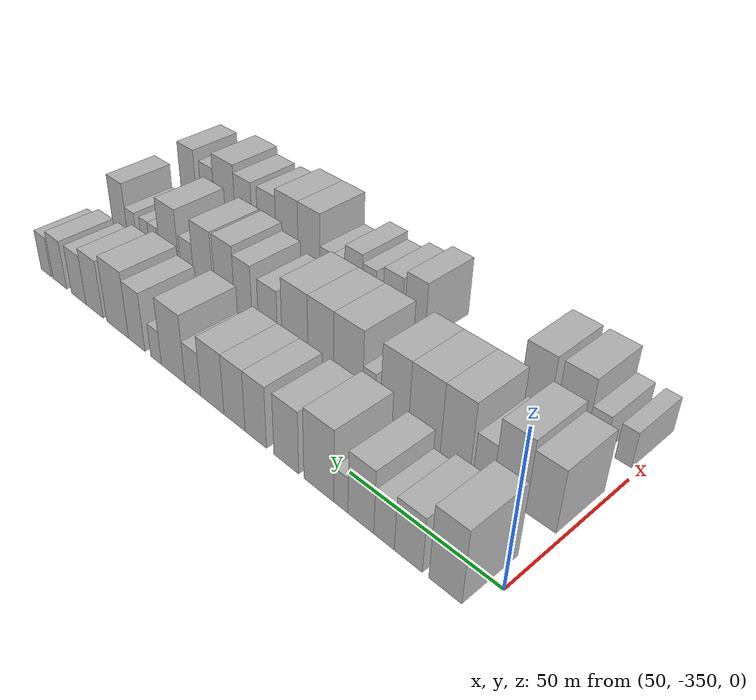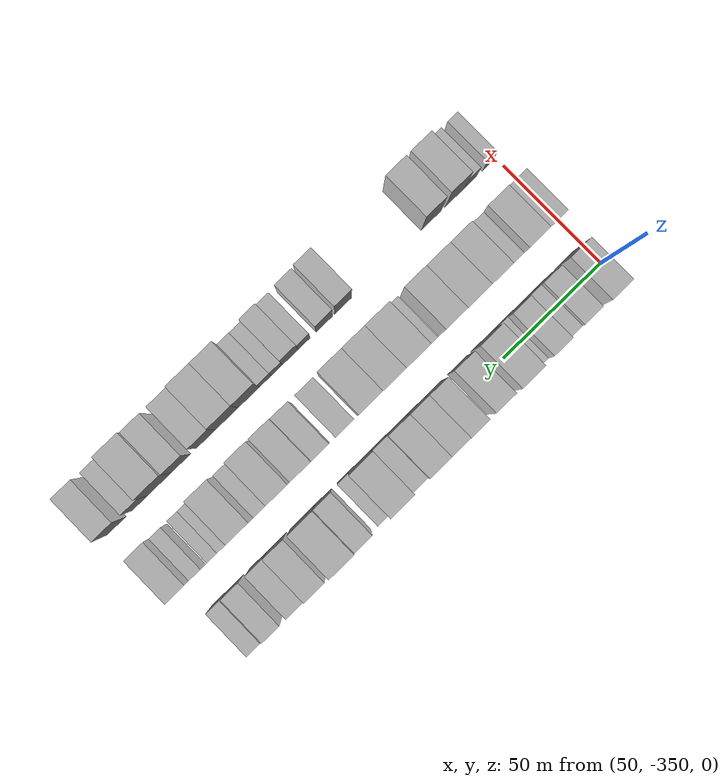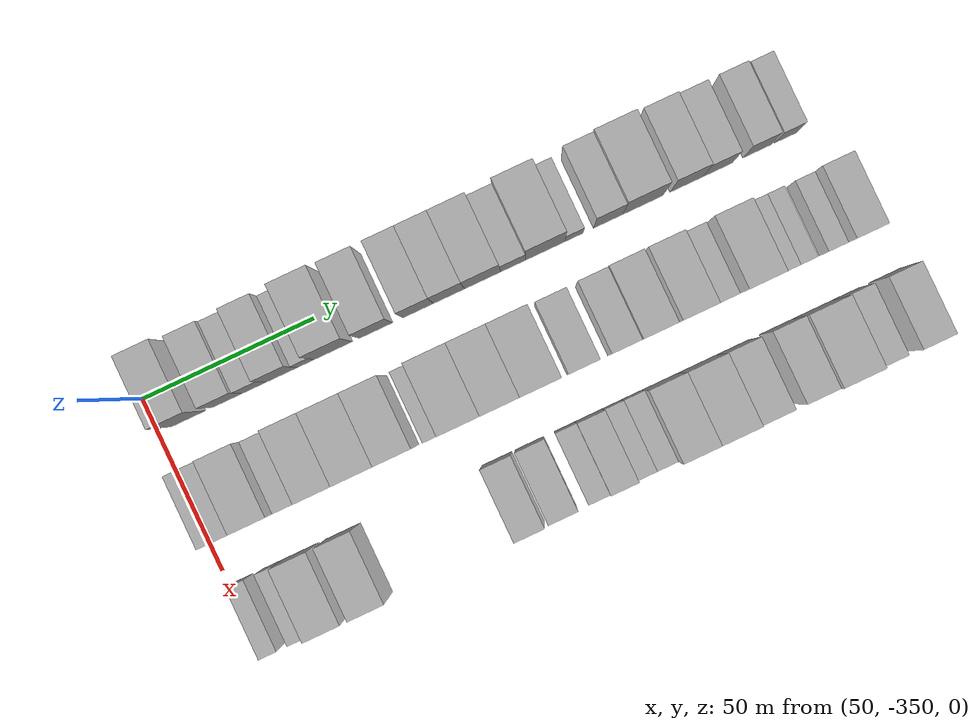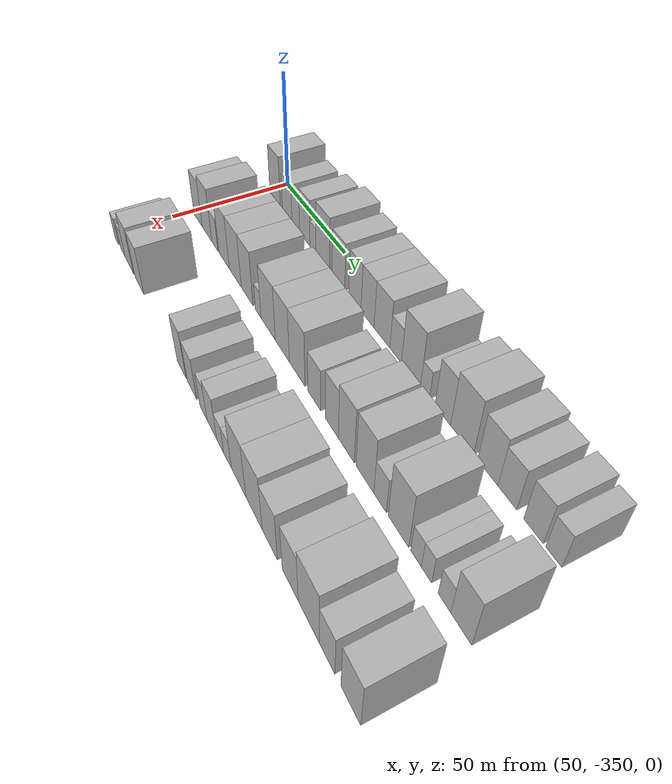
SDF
<sdf version="1.6">
 <world name="default">
  <model name="building_1">
   <static>1</static>
   <pose>50.0000 -341.0320 0 0.000000 0.000000 0.000000</pose>
   <link name="link">
    <pose>0 0 12.00 0 0 0</pose>
    <collision name="collision"><geometry><box><size>20.0000 9.9359 24.0000</size></box></geometry></collision>
    <visual name="visual">
     <cast_shadows>0</cast_shadows>
     <geometry><box><size>20.0000 9.9359 24.0000</size></box></geometry>
     <material>
      <script>
       <uri>model://HANNAS_wall/materials/scripts</uri>
       <uri>model://HANNAS_wall/materials/textures</uri>
       <name>vrc/HANNAS_wall</name>
      </script>
     </material>
    </visual>
   </link>
  </model>
  <model name="building_2">
   <static>1</static>
   <pose>50.0000 -329.5887 0 0.000000 0.000000 0.000000</pose>
   <link name="link">
    <pose>0 0 9.00 0 0 0</pose>
    <collision name="collision"><geometry><box><size>20.0000 8.9509 18.0000</size></box></geometry></collision>
    <visual name="visual">
     <cast_shadows>0</cast_shadows>
     <geometry><box><size>20.0000 8.9509 18.0000</size></box></geometry>
     <material>
      <script>
       <uri>model://HANNAS_wall/materials/scripts</uri>
       <uri>model://HANNAS_wall/materials/textures</uri>
       <name>vrc/HANNAS_wall</name>
      </script>
     </material>
    </visual>
   </link>
  </model>
  <model name="building_3">
   <static>1</static>
   <pose>50.0000 -321.7223 0 0.000000 0.000000 0.000000</pose>
   <link name="link">
    <pose>0 0 7.50 0 0 0</pose>
    <collision name="collision"><geometry><box><size>20.0000 6.7819 15.0000</size></box></geometry></collision>
    <visual name="visual">
     <cast_shadows>0</cast_shadows>
     <geometry><box><size>20.0000 6.7819 15.0000</size></box></geometry>
     <material>
      <script>
       <uri>model://HANNAS_wall/materials/scripts</uri>
       <uri>model://HANNAS_wall/materials/textures</uri>
       <name>vrc/HANNAS_wall</name>
      </script>
     </material>
    </visual>
   </link>
  </model>
  <model name="building_4">
   <static>1</static>
   <pose>50.0000 -313.8562 0 0.000000 0.000000 0.000000</pose>
   <link name="link">
    <pose>0 0 10.50 0 0 0</pose>
    <collision name="collision"><geometry><box><size>20.0000 8.9503 21.0000</size></box></geometry></collision>
    <visual name="visual">
     <cast_shadows>0</cast_shadows>
     <geometry><box><size>20.0000 8.9503 21.0000</size></box></geometry>
     <material>
      <script>
       <uri>model://HANNAS_wall/materials/scripts</uri>
       <uri>model://HANNAS_wall/materials/textures</uri>
       <name>vrc/HANNAS_wall</name>
      </script>
     </material>
    </visual>
   </link>
  </model>
  <model name="building_5">
   <static>1</static>
   <pose>50.0000 -306.8981 0 0.000000 0.000000 0.000000</pose>
   <link name="link">
    <pose>0 0 6.00 0 0 0</pose>
    <collision name="collision"><geometry><box><size>20.0000 4.9658 12.0000</size></box></geometry></collision>
    <visual name="visual">
     <cast_shadows>0</cast_shadows>
     <geometry><box><size>20.0000 4.9658 12.0000</size></box></geometry>
     <material>
      <script>
       <uri>model://HANNAS_wall/materials/scripts</uri>
       <uri>model://HANNAS_wall/materials/textures</uri>
       <name>vrc/HANNAS_wall</name>
      </script>
     </material>
    </visual>
   </link>
  </model>
  <model name="building_6">
   <static>1</static>
   <pose>50.0000 -298.8900 0 0.000000 0.000000 0.000000</pose>
   <link name="link">
    <pose>0 0 12.00 0 0 0</pose>
    <collision name="collision"><geometry><box><size>20.0000 11.0505 24.0000</size></box></geometry></collision>
    <visual name="visual">
     <cast_shadows>0</cast_shadows>
     <geometry><box><size>20.0000 11.0505 24.0000</size></box></geometry>
     <material>
      <script>
       <uri>model://HANNAS_wall/materials/scripts</uri>
       <uri>model://HANNAS_wall/materials/textures</uri>
       <name>vrc/HANNAS_wall</name>
      </script>
     </material>
    </visual>
   </link>
  </model>
  <model name="building_7">
   <static>1</static>
   <pose>50.0000 -286.5290 0 0.000000 0.000000 0.000000</pose>
   <link name="link">
    <pose>0 0 10.50 0 0 0</pose>
    <collision name="collision"><geometry><box><size>20.0000 9.6714 21.0000</size></box></geometry></collision>
    <visual name="visual">
     <cast_shadows>0</cast_shadows>
     <geometry><box><size>20.0000 9.6714 21.0000</size></box></geometry>
     <material>
      <script>
       <uri>model://HANNAS_wall/materials/scripts</uri>
       <uri>model://HANNAS_wall/materials/textures</uri>
       <name>vrc/HANNAS_wall</name>
      </script>
     </material>
    </visual>
   </link>
  </model>
  <model name="building_8">
   <static>1</static>
   <pose>50.0000 -274.2663 0 0.000000 0.000000 0.000000</pose>
   <link name="link">
    <pose>0 0 10.50 0 0 0</pose>
    <collision name="collision"><geometry><box><size>20.0000 8.8541 21.0000</size></box></geometry></collision>
    <visual name="visual">
     <cast_shadows>0</cast_shadows>
     <geometry><box><size>20.0000 8.8541 21.0000</size></box></geometry>
     <material>
      <script>
       <uri>model://HANNAS_wall/materials/scripts</uri>
       <uri>model://HANNAS_wall/materials/textures</uri>
       <name>vrc/HANNAS_wall</name>
      </script>
     </material>
    </visual>
   </link>
  </model>
  <model name="building_9">
   <static>1</static>
   <pose>50.0000 -265.3142 0 0.000000 0.000000 0.000000</pose>
   <link name="link">
    <pose>0 0 10.50 0 0 0</pose>
    <collision name="collision"><geometry><box><size>20.0000 9.0501 21.0000</size></box></geometry></collision>
    <visual name="visual">
     <cast_shadows>0</cast_shadows>
     <geometry><box><size>20.0000 9.0501 21.0000</size></box></geometry>
     <material>
      <script>
       <uri>model://HANNAS_wall/materials/scripts</uri>
       <uri>model://HANNAS_wall/materials/textures</uri>
       <name>vrc/HANNAS_wall</name>
      </script>
     </material>
    </visual>
   </link>
  </model>
  <model name="building_10">
   <static>1</static>
   <pose>50.0000 -255.5468 0 0.000000 0.000000 0.000000</pose>
   <link name="link">
    <pose>0 0 10.50 0 0 0</pose>
    <collision name="collision"><geometry><box><size>20.0000 10.4847 21.0000</size></box></geometry></collision>
    <visual name="visual">
     <cast_shadows>0</cast_shadows>
     <geometry><box><size>20.0000 10.4847 21.0000</size></box></geometry>
     <material>
      <script>
       <uri>model://HANNAS_wall/materials/scripts</uri>
       <uri>model://HANNAS_wall/materials/textures</uri>
       <name>vrc/HANNAS_wall</name>
      </script>
     </material>
    </visual>
   </link>
  </model>
  <model name="building_11">
   <static>1</static>
   <pose>50.0000 -246.6663 0 0.000000 0.000000 0.000000</pose>
   <link name="link">
    <pose>0 0 7.50 0 0 0</pose>
    <collision name="collision"><geometry><box><size>20.0000 7.2763 15.0000</size></box></geometry></collision>
    <visual name="visual">
     <cast_shadows>0</cast_shadows>
     <geometry><box><size>20.0000 7.2763 15.0000</size></box></geometry>
     <material>
      <script>
       <uri>model://HANNAS_wall/materials/scripts</uri>
       <uri>model://HANNAS_wall/materials/textures</uri>
       <name>vrc/HANNAS_wall</name>
      </script>
     </material>
    </visual>
   </link>
  </model>
  <model name="building_12">
   <static>1</static>
   <pose>50.0000 -237.3181 0 0.000000 0.000000 0.000000</pose>
   <link name="link">
    <pose>0 0 12.00 0 0 0</pose>
    <collision name="collision"><geometry><box><size>20.0000 11.4202 24.0000</size></box></geometry></collision>
    <visual name="visual">
     <cast_shadows>0</cast_shadows>
     <geometry><box><size>20.0000 11.4202 24.0000</size></box></geometry>
     <material>
      <script>
       <uri>model://HANNAS_wall/materials/scripts</uri>
       <uri>model://HANNAS_wall/materials/textures</uri>
       <name>vrc/HANNAS_wall</name>
      </script>
     </material>
    </visual>
   </link>
  </model>
  <model name="building_13">
   <static>1</static>
   <pose>50.0000 -228.9586 0 0.000000 0.000000 0.000000</pose>
   <link name="link">
    <pose>0 0 6.00 0 0 0</pose>
    <collision name="collision"><geometry><box><size>20.0000 5.2988 12.0000</size></box></geometry></collision>
    <visual name="visual">
     <cast_shadows>0</cast_shadows>
     <geometry><box><size>20.0000 5.2988 12.0000</size></box></geometry>
     <material>
      <script>
       <uri>model://HANNAS_wall/materials/scripts</uri>
       <uri>model://HANNAS_wall/materials/textures</uri>
       <name>vrc/HANNAS_wall</name>
      </script>
     </material>
    </visual>
   </link>
  </model>
  <model name="building_14">
   <static>1</static>
   <pose>50.0000 -219.0519 0 0.000000 0.000000 0.000000</pose>
   <link name="link">
    <pose>0 0 10.50 0 0 0</pose>
    <collision name="collision"><geometry><box><size>20.0000 8.5146 21.0000</size></box></geometry></collision>
    <visual name="visual">
     <cast_shadows>0</cast_shadows>
     <geometry><box><size>20.0000 8.5146 21.0000</size></box></geometry>
     <material>
      <script>
       <uri>model://HANNAS_wall/materials/scripts</uri>
       <uri>model://HANNAS_wall/materials/textures</uri>
       <name>vrc/HANNAS_wall</name>
      </script>
     </material>
    </visual>
   </link>
  </model>
  <model name="building_15">
   <static>1</static>
   <pose>50.0000 -208.8753 0 0.000000 0.000000 0.000000</pose>
   <link name="link">
    <pose>0 0 12.00 0 0 0</pose>
    <collision name="collision"><geometry><box><size>20.0000 11.8385 24.0000</size></box></geometry></collision>
    <visual name="visual">
     <cast_shadows>0</cast_shadows>
     <geometry><box><size>20.0000 11.8385 24.0000</size></box></geometry>
     <material>
      <script>
       <uri>model://HANNAS_wall/materials/scripts</uri>
       <uri>model://HANNAS_wall/materials/textures</uri>
       <name>vrc/HANNAS_wall</name>
      </script>
     </material>
    </visual>
   </link>
  </model>
  <model name="building_16">
   <static>1</static>
   <pose>50.0000 -196.1090 0 0.000000 0.000000 0.000000</pose>
   <link name="link">
    <pose>0 0 10.50 0 0 0</pose>
    <collision name="collision"><geometry><box><size>20.0000 9.6940 21.0000</size></box></geometry></collision>
    <visual name="visual">
     <cast_shadows>0</cast_shadows>
     <geometry><box><size>20.0000 9.6940 21.0000</size></box></geometry>
     <material>
      <script>
       <uri>model://HANNAS_wall/materials/scripts</uri>
       <uri>model://HANNAS_wall/materials/textures</uri>
       <name>vrc/HANNAS_wall</name>
      </script>
     </material>
    </visual>
   </link>
  </model>
  <model name="building_17">
   <static>1</static>
   <pose>50.0000 -186.9708 0 0.000000 0.000000 0.000000</pose>
   <link name="link">
    <pose>0 0 9.00 0 0 0</pose>
    <collision name="collision"><geometry><box><size>20.0000 8.5825 18.0000</size></box></geometry></collision>
    <visual name="visual">
     <cast_shadows>0</cast_shadows>
     <geometry><box><size>20.0000 8.5825 18.0000</size></box></geometry>
     <material>
      <script>
       <uri>model://HANNAS_wall/materials/scripts</uri>
       <uri>model://HANNAS_wall/materials/textures</uri>
       <name>vrc/HANNAS_wall</name>
      </script>
     </material>
    </visual>
   </link>
  </model>
  <model name="building_18">
   <static>1</static>
   <pose>50.0000 -175.5464 0 0.000000 0.000000 0.000000</pose>
   <link name="link">
    <pose>0 0 9.00 0 0 0</pose>
    <collision name="collision"><geometry><box><size>20.0000 8.2664 18.0000</size></box></geometry></collision>
    <visual name="visual">
     <cast_shadows>0</cast_shadows>
     <geometry><box><size>20.0000 8.2664 18.0000</size></box></geometry>
     <material>
      <script>
       <uri>model://HANNAS_wall/materials/scripts</uri>
       <uri>model://HANNAS_wall/materials/textures</uri>
       <name>vrc/HANNAS_wall</name>
      </script>
     </material>
    </visual>
   </link>
  </model>
  <model name="building_19">
   <static>1</static>
   <pose>50.0000 -167.1778 0 0.000000 0.000000 0.000000</pose>
   <link name="link">
    <pose>0 0 7.50 0 0 0</pose>
    <collision name="collision"><geometry><box><size>20.0000 6.4707 15.0000</size></box></geometry></collision>
    <visual name="visual">
     <cast_shadows>0</cast_shadows>
     <geometry><box><size>20.0000 6.4707 15.0000</size></box></geometry>
     <material>
      <script>
       <uri>model://HANNAS_wall/materials/scripts</uri>
       <uri>model://HANNAS_wall/materials/textures</uri>
       <name>vrc/HANNAS_wall</name>
      </script>
     </material>
    </visual>
   </link>
  </model>
  <model name="building_75">
   <static>1</static>
   <pose>82.0000 -343.3972 0 0.000000 0.000000 0.000000</pose>
   <link name="link">
    <pose>0 0 10.50 0 0 0</pose>
    <collision name="collision"><geometry><box><size>20.0000 9.2056 21.0000</size></box></geometry></collision>
    <visual name="visual">
     <cast_shadows>0</cast_shadows>
     <geometry><box><size>20.0000 9.2056 21.0000</size></box></geometry>
     <material>
      <script>
       <uri>model://HANNAS_wall/materials/scripts</uri>
       <uri>model://HANNAS_wall/materials/textures</uri>
       <name>vrc/HANNAS_wall</name>
      </script>
     </material>
    </visual>
   </link>
  </model>
  <model name="building_76">
   <static>1</static>
   <pose>82.0000 -333.6849 0 0.000000 0.000000 0.000000</pose>
   <link name="link">
    <pose>0 0 12.00 0 0 0</pose>
    <collision name="collision"><geometry><box><size>20.0000 10.2191 24.0000</size></box></geometry></collision>
    <visual name="visual">
     <cast_shadows>0</cast_shadows>
     <geometry><box><size>20.0000 10.2191 24.0000</size></box></geometry>
     <material>
      <script>
       <uri>model://HANNAS_wall/materials/scripts</uri>
       <uri>model://HANNAS_wall/materials/textures</uri>
       <name>vrc/HANNAS_wall</name>
      </script>
     </material>
    </visual>
   </link>
  </model>
  <model name="building_77">
   <static>1</static>
   <pose>82.0000 -325.3562 0 0.000000 0.000000 0.000000</pose>
   <link name="link">
    <pose>0 0 7.50 0 0 0</pose>
    <collision name="collision"><geometry><box><size>20.0000 6.4383 15.0000</size></box></geometry></collision>
    <visual name="visual">
     <cast_shadows>0</cast_shadows>
     <geometry><box><size>20.0000 6.4383 15.0000</size></box></geometry>
     <material>
      <script>
       <uri>model://HANNAS_wall/materials/scripts</uri>
       <uri>model://HANNAS_wall/materials/textures</uri>
       <name>vrc/HANNAS_wall</name>
      </script>
     </material>
    </visual>
   </link>
  </model>
  <model name="building_78">
   <static>1</static>
   <pose>82.0000 -316.0424 0 0.000000 0.000000 0.000000</pose>
   <link name="link">
    <pose>0 0 12.00 0 0 0</pose>
    <collision name="collision"><geometry><box><size>20.0000 10.1892 24.0000</size></box></geometry></collision>
    <visual name="visual">
     <cast_shadows>0</cast_shadows>
     <geometry><box><size>20.0000 10.1892 24.0000</size></box></geometry>
     <material>
      <script>
       <uri>model://HANNAS_wall/materials/scripts</uri>
       <uri>model://HANNAS_wall/materials/textures</uri>
       <name>vrc/HANNAS_wall</name>
      </script>
     </material>
    </visual>
   </link>
  </model>
  <model name="building_79">
   <static>1</static>
   <pose>82.0000 -305.2497 0 0.000000 0.000000 0.000000</pose>
   <link name="link">
    <pose>0 0 12.00 0 0 0</pose>
    <collision name="collision"><geometry><box><size>20.0000 11.3962 24.0000</size></box></geometry></collision>
    <visual name="visual">
     <cast_shadows>0</cast_shadows>
     <geometry><box><size>20.0000 11.3962 24.0000</size></box></geometry>
     <material>
      <script>
       <uri>model://HANNAS_wall/materials/scripts</uri>
       <uri>model://HANNAS_wall/materials/textures</uri>
       <name>vrc/HANNAS_wall</name>
      </script>
     </material>
    </visual>
   </link>
  </model>
  <model name="building_80">
   <static>1</static>
   <pose>82.0000 -294.3235 0 0.000000 0.000000 0.000000</pose>
   <link name="link">
    <pose>0 0 12.00 0 0 0</pose>
    <collision name="collision"><geometry><box><size>20.0000 10.4561 24.0000</size></box></geometry></collision>
    <visual name="visual">
     <cast_shadows>0</cast_shadows>
     <geometry><box><size>20.0000 10.4561 24.0000</size></box></geometry>
     <material>
      <script>
       <uri>model://HANNAS_wall/materials/scripts</uri>
       <uri>model://HANNAS_wall/materials/textures</uri>
       <name>vrc/HANNAS_wall</name>
      </script>
     </material>
    </visual>
   </link>
  </model>
  <model name="building_81">
   <static>1</static>
   <pose>82.0000 -284.6450 0 0.000000 0.000000 0.000000</pose>
   <link name="link">
    <pose>0 0 6.00 0 0 0</pose>
    <collision name="collision"><geometry><box><size>20.0000 4.9009 12.0000</size></box></geometry></collision>
    <visual name="visual">
     <cast_shadows>0</cast_shadows>
     <geometry><box><size>20.0000 4.9009 12.0000</size></box></geometry>
     <material>
      <script>
       <uri>model://HANNAS_wall/materials/scripts</uri>
       <uri>model://HANNAS_wall/materials/textures</uri>
       <name>vrc/HANNAS_wall</name>
      </script>
     </material>
    </visual>
   </link>
  </model>
  <model name="building_82">
   <static>1</static>
   <pose>82.0000 -276.3248 0 0.000000 0.000000 0.000000</pose>
   <link name="link">
    <pose>0 0 12.00 0 0 0</pose>
    <collision name="collision"><geometry><box><size>20.0000 11.7394 24.0000</size></box></geometry></collision>
    <visual name="visual">
     <cast_shadows>0</cast_shadows>
     <geometry><box><size>20.0000 11.7394 24.0000</size></box></geometry>
     <material>
      <script>
       <uri>model://HANNAS_wall/materials/scripts</uri>
       <uri>model://HANNAS_wall/materials/textures</uri>
       <name>vrc/HANNAS_wall</name>
      </script>
     </material>
    </visual>
   </link>
  </model>
  <model name="building_83">
   <static>1</static>
   <pose>82.0000 -265.0040 0 0.000000 0.000000 0.000000</pose>
   <link name="link">
    <pose>0 0 12.00 0 0 0</pose>
    <collision name="collision"><geometry><box><size>20.0000 10.9022 24.0000</size></box></geometry></collision>
    <visual name="visual">
     <cast_shadows>0</cast_shadows>
     <geometry><box><size>20.0000 10.9022 24.0000</size></box></geometry>
     <material>
      <script>
       <uri>model://HANNAS_wall/materials/scripts</uri>
       <uri>model://HANNAS_wall/materials/textures</uri>
       <name>vrc/HANNAS_wall</name>
      </script>
     </material>
    </visual>
   </link>
  </model>
  <model name="building_84">
   <static>1</static>
   <pose>82.0000 -253.8246 0 0.000000 0.000000 0.000000</pose>
   <link name="link">
    <pose>0 0 12.00 0 0 0</pose>
    <collision name="collision"><geometry><box><size>20.0000 11.4564 24.0000</size></box></geometry></collision>
    <visual name="visual">
     <cast_shadows>0</cast_shadows>
     <geometry><box><size>20.0000 11.4564 24.0000</size></box></geometry>
     <material>
      <script>
       <uri>model://HANNAS_wall/materials/scripts</uri>
       <uri>model://HANNAS_wall/materials/textures</uri>
       <name>vrc/HANNAS_wall</name>
      </script>
     </material>
    </visual>
   </link>
  </model>
  <model name="building_85">
   <static>1</static>
   <pose>82.0000 -241.6808 0 0.000000 0.000000 0.000000</pose>
   <link name="link">
    <pose>0 0 9.00 0 0 0</pose>
    <collision name="collision"><geometry><box><size>20.0000 8.8311 18.0000</size></box></geometry></collision>
    <visual name="visual">
     <cast_shadows>0</cast_shadows>
     <geometry><box><size>20.0000 8.8311 18.0000</size></box></geometry>
     <material>
      <script>
       <uri>model://HANNAS_wall/materials/scripts</uri>
       <uri>model://HANNAS_wall/materials/textures</uri>
       <name>vrc/HANNAS_wall</name>
      </script>
     </material>
    </visual>
   </link>
  </model>
  <model name="building_86">
   <static>1</static>
   <pose>82.0000 -230.0495 0 0.000000 0.000000 0.000000</pose>
   <link name="link">
    <pose>0 0 10.50 0 0 0</pose>
    <collision name="collision"><geometry><box><size>20.0000 8.4316 21.0000</size></box></geometry></collision>
    <visual name="visual">
     <cast_shadows>0</cast_shadows>
     <geometry><box><size>20.0000 8.4316 21.0000</size></box></geometry>
     <material>
      <script>
       <uri>model://HANNAS_wall/materials/scripts</uri>
       <uri>model://HANNAS_wall/materials/textures</uri>
       <name>vrc/HANNAS_wall</name>
      </script>
     </material>
    </visual>
   </link>
  </model>
  <model name="building_87">
   <static>1</static>
   <pose>82.0000 -220.9518 0 0.000000 0.000000 0.000000</pose>
   <link name="link">
    <pose>0 0 12.00 0 0 0</pose>
    <collision name="collision"><geometry><box><size>20.0000 9.7637 24.0000</size></box></geometry></collision>
    <visual name="visual">
     <cast_shadows>0</cast_shadows>
     <geometry><box><size>20.0000 9.7637 24.0000</size></box></geometry>
     <material>
      <script>
       <uri>model://HANNAS_wall/materials/scripts</uri>
       <uri>model://HANNAS_wall/materials/textures</uri>
       <name>vrc/HANNAS_wall</name>
      </script>
     </material>
    </visual>
   </link>
  </model>
  <model name="building_88">
   <static>1</static>
   <pose>82.0000 -209.9772 0 0.000000 0.000000 0.000000</pose>
   <link name="link">
    <pose>0 0 12.00 0 0 0</pose>
    <collision name="collision"><geometry><box><size>20.0000 10.1855 24.0000</size></box></geometry></collision>
    <visual name="visual">
     <cast_shadows>0</cast_shadows>
     <geometry><box><size>20.0000 10.1855 24.0000</size></box></geometry>
     <material>
      <script>
       <uri>model://HANNAS_wall/materials/scripts</uri>
       <uri>model://HANNAS_wall/materials/textures</uri>
       <name>vrc/HANNAS_wall</name>
      </script>
     </material>
    </visual>
   </link>
  </model>
  <model name="building_89">
   <static>1</static>
   <pose>82.0000 -201.4485 0 0.000000 0.000000 0.000000</pose>
   <link name="link">
    <pose>0 0 7.50 0 0 0</pose>
    <collision name="collision"><geometry><box><size>20.0000 6.8718 15.0000</size></box></geometry></collision>
    <visual name="visual">
     <cast_shadows>0</cast_shadows>
     <geometry><box><size>20.0000 6.8718 15.0000</size></box></geometry>
     <material>
      <script>
       <uri>model://HANNAS_wall/materials/scripts</uri>
       <uri>model://HANNAS_wall/materials/textures</uri>
       <name>vrc/HANNAS_wall</name>
      </script>
     </material>
    </visual>
   </link>
  </model>
  <model name="building_90">
   <static>1</static>
   <pose>82.0000 -191.7365 0 0.000000 0.000000 0.000000</pose>
   <link name="link">
    <pose>0 0 12.00 0 0 0</pose>
    <collision name="collision"><geometry><box><size>20.0000 10.5523 24.0000</size></box></geometry></collision>
    <visual name="visual">
     <cast_shadows>0</cast_shadows>
     <geometry><box><size>20.0000 10.5523 24.0000</size></box></geometry>
     <material>
      <script>
       <uri>model://HANNAS_wall/materials/scripts</uri>
       <uri>model://HANNAS_wall/materials/textures</uri>
       <name>vrc/HANNAS_wall</name>
      </script>
     </material>
    </visual>
   </link>
  </model>
  <model name="building_91">
   <static>1</static>
   <pose>82.0000 -182.9058 0 0.000000 0.000000 0.000000</pose>
   <link name="link">
    <pose>0 0 6.00 0 0 0</pose>
    <collision name="collision"><geometry><box><size>20.0000 5.1093 12.0000</size></box></geometry></collision>
    <visual name="visual">
     <cast_shadows>0</cast_shadows>
     <geometry><box><size>20.0000 5.1093 12.0000</size></box></geometry>
     <material>
      <script>
       <uri>model://HANNAS_wall/materials/scripts</uri>
       <uri>model://HANNAS_wall/materials/textures</uri>
       <name>vrc/HANNAS_wall</name>
      </script>
     </material>
    </visual>
   </link>
  </model>
  <model name="building_92">
   <static>1</static>
   <pose>82.0000 -177.9301 0 0.000000 0.000000 0.000000</pose>
   <link name="link">
    <pose>0 0 6.00 0 0 0</pose>
    <collision name="collision"><geometry><box><size>20.0000 4.8421 12.0000</size></box></geometry></collision>
    <visual name="visual">
     <cast_shadows>0</cast_shadows>
     <geometry><box><size>20.0000 4.8421 12.0000</size></box></geometry>
     <material>
      <script>
       <uri>model://HANNAS_wall/materials/scripts</uri>
       <uri>model://HANNAS_wall/materials/textures</uri>
       <name>vrc/HANNAS_wall</name>
      </script>
     </material>
    </visual>
   </link>
  </model>
  <model name="building_93">
   <static>1</static>
   <pose>82.0000 -169.7101 0 0.000000 0.000000 0.000000</pose>
   <link name="link">
    <pose>0 0 6.00 0 0 0</pose>
    <collision name="collision"><geometry><box><size>20.0000 5.5980 12.0000</size></box></geometry></collision>
    <visual name="visual">
     <cast_shadows>0</cast_shadows>
     <geometry><box><size>20.0000 5.5980 12.0000</size></box></geometry>
     <material>
      <script>
       <uri>model://HANNAS_wall/materials/scripts</uri>
       <uri>model://HANNAS_wall/materials/textures</uri>
       <name>vrc/HANNAS_wall</name>
      </script>
     </material>
    </visual>
   </link>
  </model>
  <model name="building_94">
   <static>1</static>
   <pose>82.0000 -162.4457 0 0.000000 0.000000 0.000000</pose>
   <link name="link">
    <pose>0 0 10.50 0 0 0</pose>
    <collision name="collision"><geometry><box><size>20.0000 8.9309 21.0000</size></box></geometry></collision>
    <visual name="visual">
     <cast_shadows>0</cast_shadows>
     <geometry><box><size>20.0000 8.9309 21.0000</size></box></geometry>
     <material>
      <script>
       <uri>model://HANNAS_wall/materials/scripts</uri>
       <uri>model://HANNAS_wall/materials/textures</uri>
       <name>vrc/HANNAS_wall</name>
      </script>
     </material>
    </visual>
   </link>
  </model>
  <model name="building_148">
   <static>1</static>
   <pose>114.0000 -345.4948 0 0.000000 0.000000 0.000000</pose>
   <link name="link">
    <pose>0 0 6.00 0 0 0</pose>
    <collision name="collision"><geometry><box><size>20.0000 5.0104 12.0000</size></box></geometry></collision>
    <visual name="visual">
     <cast_shadows>0</cast_shadows>
     <geometry><box><size>20.0000 5.0104 12.0000</size></box></geometry>
     <material>
      <script>
       <uri>model://HANNAS_wall/materials/scripts</uri>
       <uri>model://HANNAS_wall/materials/textures</uri>
       <name>vrc/HANNAS_wall</name>
      </script>
     </material>
    </visual>
   </link>
  </model>
  <model name="building_149">
   <static>1</static>
   <pose>114.0000 -337.0408 0 0.000000 0.000000 0.000000</pose>
   <link name="link">
    <pose>0 0 6.00 0 0 0</pose>
    <collision name="collision"><geometry><box><size>20.0000 5.8976 12.0000</size></box></geometry></collision>
    <visual name="visual">
     <cast_shadows>0</cast_shadows>
     <geometry><box><size>20.0000 5.8976 12.0000</size></box></geometry>
     <material>
      <script>
       <uri>model://HANNAS_wall/materials/scripts</uri>
       <uri>model://HANNAS_wall/materials/textures</uri>
       <name>vrc/HANNAS_wall</name>
      </script>
     </material>
    </visual>
   </link>
  </model>
  <model name="building_150">
   <static>1</static>
   <pose>114.0000 -328.9628 0 0.000000 0.000000 0.000000</pose>
   <link name="link">
    <pose>0 0 10.50 0 0 0</pose>
    <collision name="collision"><geometry><box><size>20.0000 10.2585 21.0000</size></box></geometry></collision>
    <visual name="visual">
     <cast_shadows>0</cast_shadows>
     <geometry><box><size>20.0000 10.2585 21.0000</size></box></geometry>
     <material>
      <script>
       <uri>model://HANNAS_wall/materials/scripts</uri>
       <uri>model://HANNAS_wall/materials/textures</uri>
       <name>vrc/HANNAS_wall</name>
      </script>
     </material>
    </visual>
   </link>
  </model>
  <model name="building_151">
   <static>1</static>
   <pose>114.0000 -316.7966 0 0.000000 0.000000 0.000000</pose>
   <link name="link">
    <pose>0 0 10.50 0 0 0</pose>
    <collision name="collision"><geometry><box><size>20.0000 10.0739 21.0000</size></box></geometry></collision>
    <visual name="visual">
     <cast_shadows>0</cast_shadows>
     <geometry><box><size>20.0000 10.0739 21.0000</size></box></geometry>
     <material>
      <script>
       <uri>model://HANNAS_wall/materials/scripts</uri>
       <uri>model://HANNAS_wall/materials/textures</uri>
       <name>vrc/HANNAS_wall</name>
      </script>
     </material>
    </visual>
   </link>
  </model>
  <model name="building_152">
   <static>1</static>
   <pose>114.0000 -272.0457 0 0.000000 0.000000 0.000000</pose>
   <link name="link">
    <pose>0 0 10.50 0 0 0</pose>
    <collision name="collision"><geometry><box><size>20.0000 8.4759 21.0000</size></box></geometry></collision>
    <visual name="visual">
     <cast_shadows>0</cast_shadows>
     <geometry><box><size>20.0000 8.4759 21.0000</size></box></geometry>
     <material>
      <script>
       <uri>model://HANNAS_wall/materials/scripts</uri>
       <uri>model://HANNAS_wall/materials/textures</uri>
       <name>vrc/HANNAS_wall</name>
      </script>
     </material>
    </visual>
   </link>
  </model>
  <model name="building_153">
   <static>1</static>
   <pose>114.0000 -262.6679 0 0.000000 0.000000 0.000000</pose>
   <link name="link">
    <pose>0 0 9.00 0 0 0</pose>
    <collision name="collision"><geometry><box><size>20.0000 8.2797 18.0000</size></box></geometry></collision>
    <visual name="visual">
     <cast_shadows>0</cast_shadows>
     <geometry><box><size>20.0000 8.2797 18.0000</size></box></geometry>
     <material>
      <script>
       <uri>model://HANNAS_wall/materials/scripts</uri>
       <uri>model://HANNAS_wall/materials/textures</uri>
       <name>vrc/HANNAS_wall</name>
      </script>
     </material>
    </visual>
   </link>
  </model>
  <model name="building_154">
   <static>1</static>
   <pose>114.0000 -252.4935 0 0.000000 0.000000 0.000000</pose>
   <link name="link">
    <pose>0 0 7.50 0 0 0</pose>
    <collision name="collision"><geometry><box><size>20.0000 6.0691 15.0000</size></box></geometry></collision>
    <visual name="visual">
     <cast_shadows>0</cast_shadows>
     <geometry><box><size>20.0000 6.0691 15.0000</size></box></geometry>
     <material>
      <script>
       <uri>model://HANNAS_wall/materials/scripts</uri>
       <uri>model://HANNAS_wall/materials/textures</uri>
       <name>vrc/HANNAS_wall</name>
      </script>
     </material>
    </visual>
   </link>
  </model>
  <model name="building_155">
   <static>1</static>
   <pose>114.0000 -245.5329 0 0.000000 0.000000 0.000000</pose>
   <link name="link">
    <pose>0 0 9.00 0 0 0</pose>
    <collision name="collision"><geometry><box><size>20.0000 7.8521 18.0000</size></box></geometry></collision>
    <visual name="visual">
     <cast_shadows>0</cast_shadows>
     <geometry><box><size>20.0000 7.8521 18.0000</size></box></geometry>
     <material>
      <script>
       <uri>model://HANNAS_wall/materials/scripts</uri>
       <uri>model://HANNAS_wall/materials/textures</uri>
       <name>vrc/HANNAS_wall</name>
      </script>
     </material>
    </visual>
   </link>
  </model>
  <model name="building_156">
   <static>1</static>
   <pose>114.0000 -238.8271 0 0.000000 0.000000 0.000000</pose>
   <link name="link">
    <pose>0 0 6.00 0 0 0</pose>
    <collision name="collision"><geometry><box><size>20.0000 5.5597 12.0000</size></box></geometry></collision>
    <visual name="visual">
     <cast_shadows>0</cast_shadows>
     <geometry><box><size>20.0000 5.5597 12.0000</size></box></geometry>
     <material>
      <script>
       <uri>model://HANNAS_wall/materials/scripts</uri>
       <uri>model://HANNAS_wall/materials/textures</uri>
       <name>vrc/HANNAS_wall</name>
      </script>
     </material>
    </visual>
   </link>
  </model>
  <model name="building_157">
   <static>1</static>
   <pose>114.0000 -233.0786 0 0.000000 0.000000 0.000000</pose>
   <link name="link">
    <pose>0 0 6.00 0 0 0</pose>
    <collision name="collision"><geometry><box><size>20.0000 5.9372 12.0000</size></box></geometry></collision>
    <visual name="visual">
     <cast_shadows>0</cast_shadows>
     <geometry><box><size>20.0000 5.9372 12.0000</size></box></geometry>
     <material>
      <script>
       <uri>model://HANNAS_wall/materials/scripts</uri>
       <uri>model://HANNAS_wall/materials/textures</uri>
       <name>vrc/HANNAS_wall</name>
      </script>
     </material>
    </visual>
   </link>
  </model>
  <model name="building_158">
   <static>1</static>
   <pose>114.0000 -224.8227 0 0.000000 0.000000 0.000000</pose>
   <link name="link">
    <pose>0 0 12.00 0 0 0</pose>
    <collision name="collision"><geometry><box><size>20.0000 10.5746 24.0000</size></box></geometry></collision>
    <visual name="visual">
     <cast_shadows>0</cast_shadows>
     <geometry><box><size>20.0000 10.5746 24.0000</size></box></geometry>
     <material>
      <script>
       <uri>model://HANNAS_wall/materials/scripts</uri>
       <uri>model://HANNAS_wall/materials/textures</uri>
       <name>vrc/HANNAS_wall</name>
      </script>
     </material>
    </visual>
   </link>
  </model>
  <model name="building_159">
   <static>1</static>
   <pose>114.0000 -213.9580 0 0.000000 0.000000 0.000000</pose>
   <link name="link">
    <pose>0 0 12.00 0 0 0</pose>
    <collision name="collision"><geometry><box><size>20.0000 11.1549 24.0000</size></box></geometry></collision>
    <visual name="visual">
     <cast_shadows>0</cast_shadows>
     <geometry><box><size>20.0000 11.1549 24.0000</size></box></geometry>
     <material>
      <script>
       <uri>model://HANNAS_wall/materials/scripts</uri>
       <uri>model://HANNAS_wall/materials/textures</uri>
       <name>vrc/HANNAS_wall</name>
      </script>
     </material>
    </visual>
   </link>
  </model>
  <model name="building_160">
   <static>1</static>
   <pose>114.0000 -203.5881 0 0.000000 0.000000 0.000000</pose>
   <link name="link">
    <pose>0 0 10.50 0 0 0</pose>
    <collision name="collision"><geometry><box><size>20.0000 9.5849 21.0000</size></box></geometry></collision>
    <visual name="visual">
     <cast_shadows>0</cast_shadows>
     <geometry><box><size>20.0000 9.5849 21.0000</size></box></geometry>
     <material>
      <script>
       <uri>model://HANNAS_wall/materials/scripts</uri>
       <uri>model://HANNAS_wall/materials/textures</uri>
       <name>vrc/HANNAS_wall</name>
      </script>
     </material>
    </visual>
   </link>
  </model>
  <model name="building_161">
   <static>1</static>
   <pose>114.0000 -191.1333 0 0.000000 0.000000 0.000000</pose>
   <link name="link">
    <pose>0 0 10.50 0 0 0</pose>
    <collision name="collision"><geometry><box><size>20.0000 9.3246 21.0000</size></box></geometry></collision>
    <visual name="visual">
     <cast_shadows>0</cast_shadows>
     <geometry><box><size>20.0000 9.3246 21.0000</size></box></geometry>
     <material>
      <script>
       <uri>model://HANNAS_wall/materials/scripts</uri>
       <uri>model://HANNAS_wall/materials/textures</uri>
       <name>vrc/HANNAS_wall</name>
      </script>
     </material>
    </visual>
   </link>
  </model>
  <model name="building_162">
   <static>1</static>
   <pose>114.0000 -180.6017 0 0.000000 0.000000 0.000000</pose>
   <link name="link">
    <pose>0 0 12.00 0 0 0</pose>
    <collision name="collision"><geometry><box><size>20.0000 11.7385 24.0000</size></box></geometry></collision>
    <visual name="visual">
     <cast_shadows>0</cast_shadows>
     <geometry><box><size>20.0000 11.7385 24.0000</size></box></geometry>
     <material>
      <script>
       <uri>model://HANNAS_wall/materials/scripts</uri>
       <uri>model://HANNAS_wall/materials/textures</uri>
       <name>vrc/HANNAS_wall</name>
      </script>
     </material>
    </visual>
   </link>
  </model>
  <model name="building_163">
   <static>1</static>
   <pose>114.0000 -170.8088 0 0.000000 0.000000 0.000000</pose>
   <link name="link">
    <pose>0 0 9.00 0 0 0</pose>
    <collision name="collision"><geometry><box><size>20.0000 7.8474 18.0000</size></box></geometry></collision>
    <visual name="visual">
     <cast_shadows>0</cast_shadows>
     <geometry><box><size>20.0000 7.8474 18.0000</size></box></geometry>
     <material>
      <script>
       <uri>model://HANNAS_wall/materials/scripts</uri>
       <uri>model://HANNAS_wall/materials/textures</uri>
       <name>vrc/HANNAS_wall</name>
      </script>
     </material>
    </visual>
   </link>
  </model>
  <model name="building_164">
   <static>1</static>
   <pose>114.0000 -159.2208 0 0.000000 0.000000 0.000000</pose>
   <link name="link">
    <pose>0 0 10.50 0 0 0</pose>
    <collision name="collision"><geometry><box><size>20.0000 9.3286 21.0000</size></box></geometry></collision>
    <visual name="visual">
     <cast_shadows>0</cast_shadows>
     <geometry><box><size>20.0000 9.3286 21.0000</size></box></geometry>
     <material>
      <script>
       <uri>model://HANNAS_wall/materials/scripts</uri>
       <uri>model://HANNAS_wall/materials/textures</uri>
       <name>vrc/HANNAS_wall</name>
      </script>
     </material>
    </visual>
   </link>
  </model>
 </world>
</sdf>
